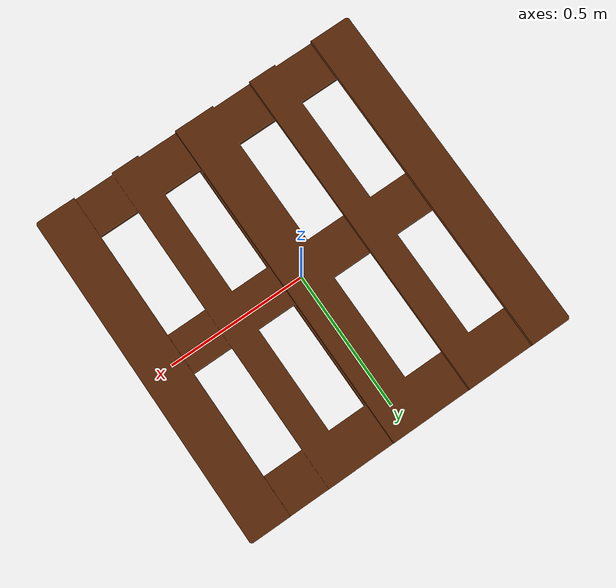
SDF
<?xml version='1.0' ?>
<sdf version="1.7">
  <model name="europallet">
    <static>1</static>
    <link name="link">
      <collision name="collision">
        <geometry>
          <mesh>
            <uri>model://europallet/europallet.dae</uri>
            <scale>0.001 0.001 0.001</scale>
          </mesh>
        </geometry>
      </collision>
      <visual name='visual'>
        <geometry>
          <mesh>
            <uri>model://europallet/europallet.dae</uri>
            <scale>0.001 0.001 0.001</scale>
          </mesh>
        </geometry>
      </visual>
    </link>
  </model>
</sdf>
